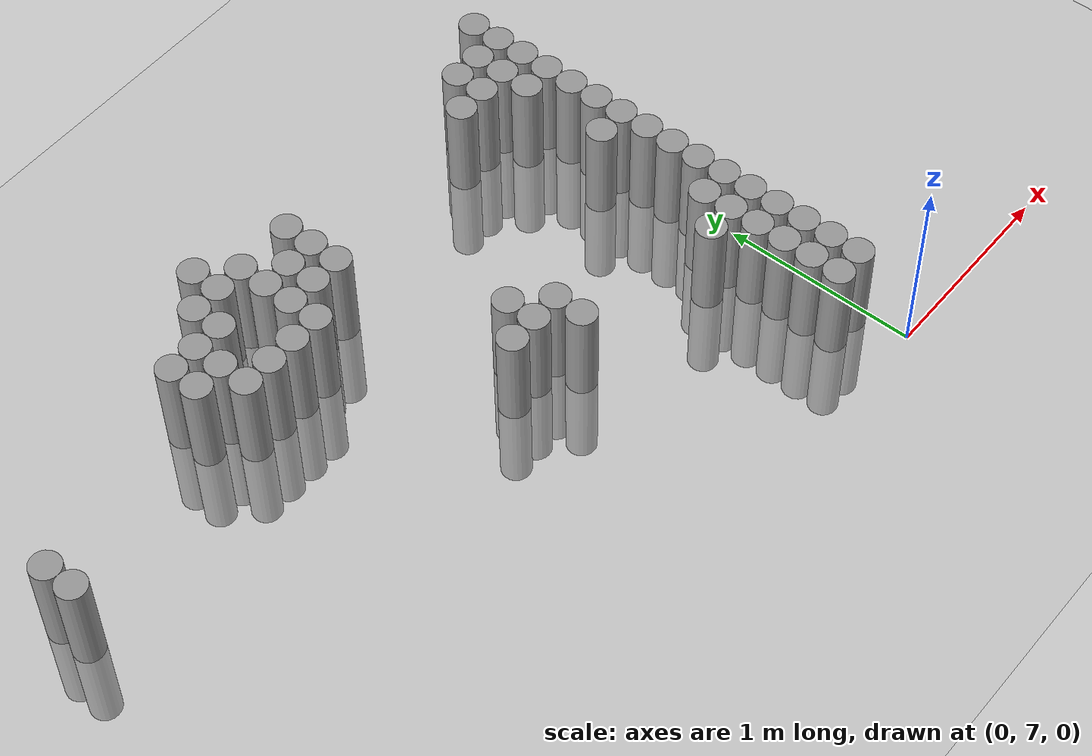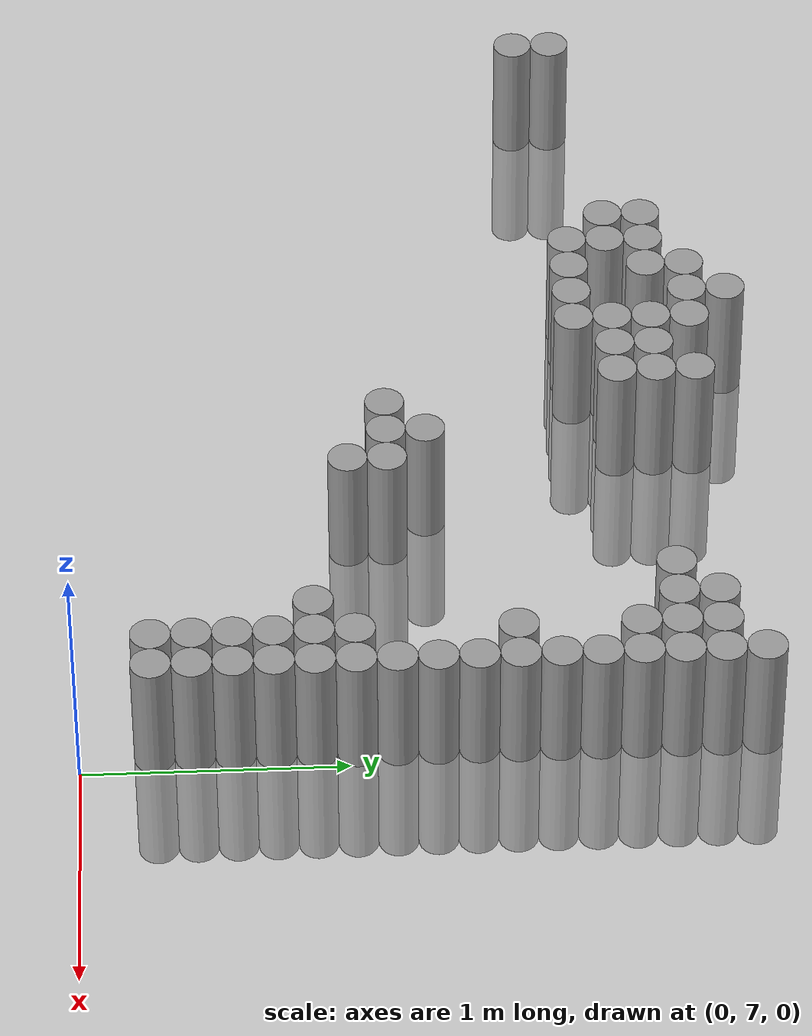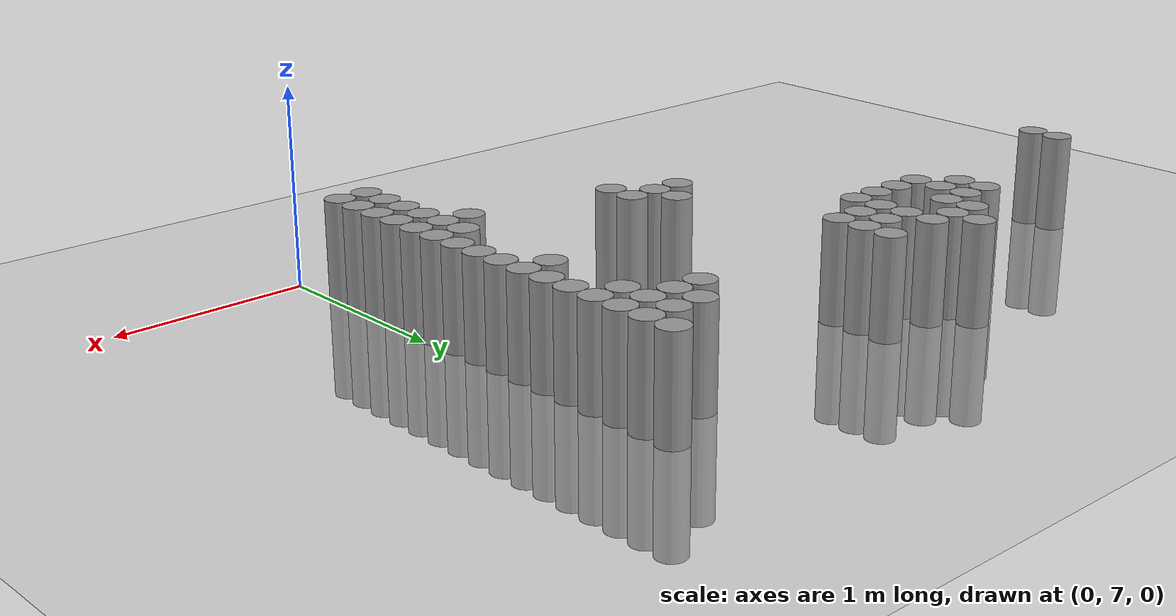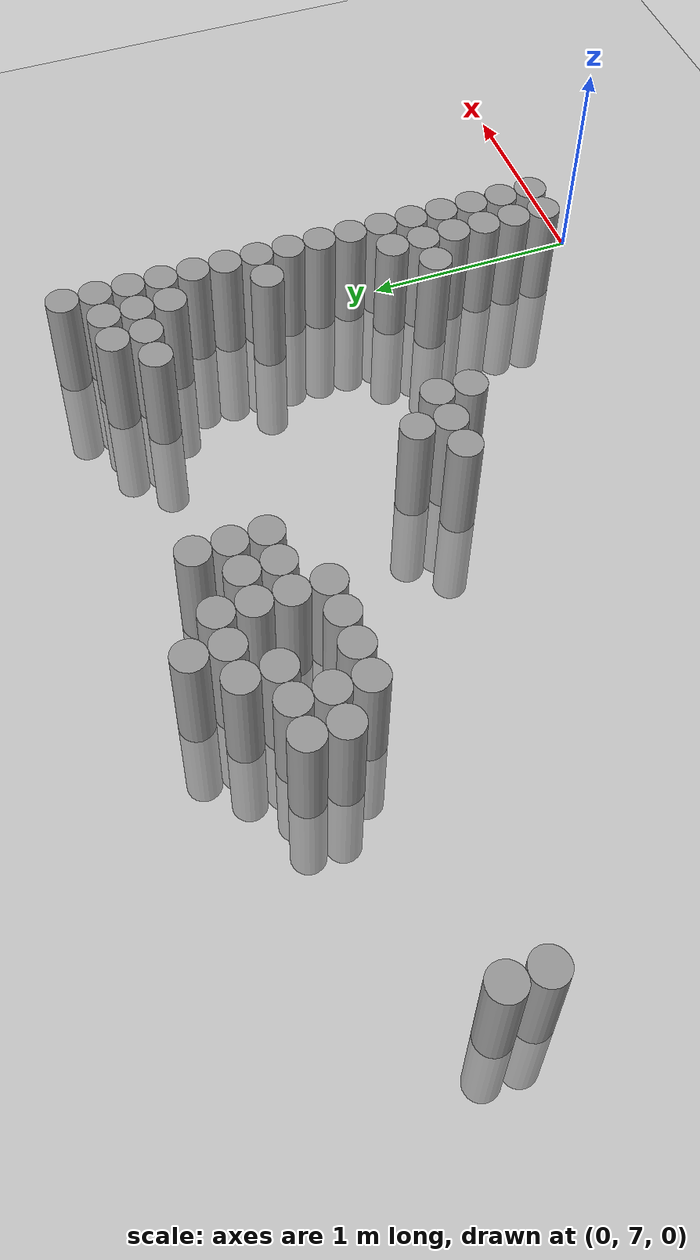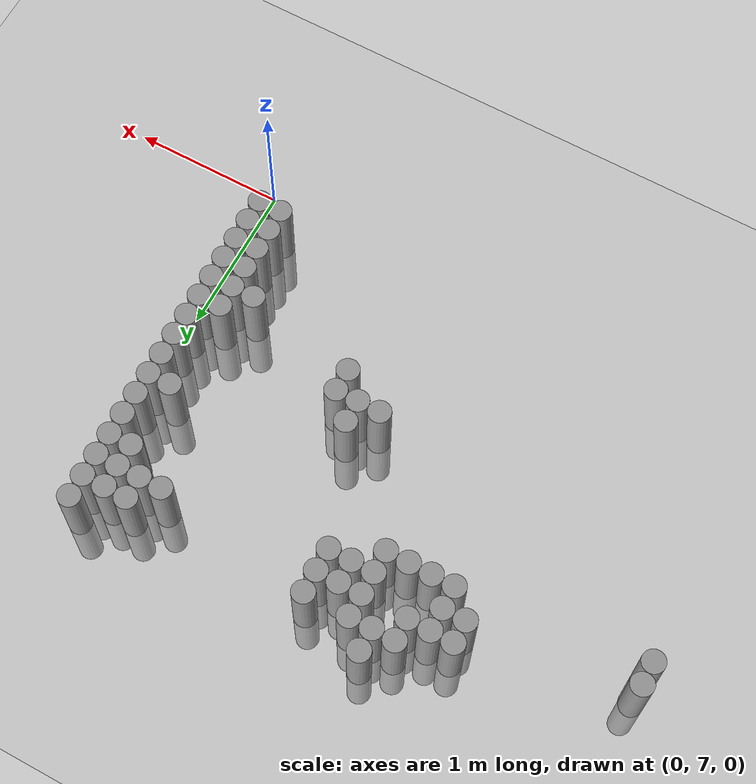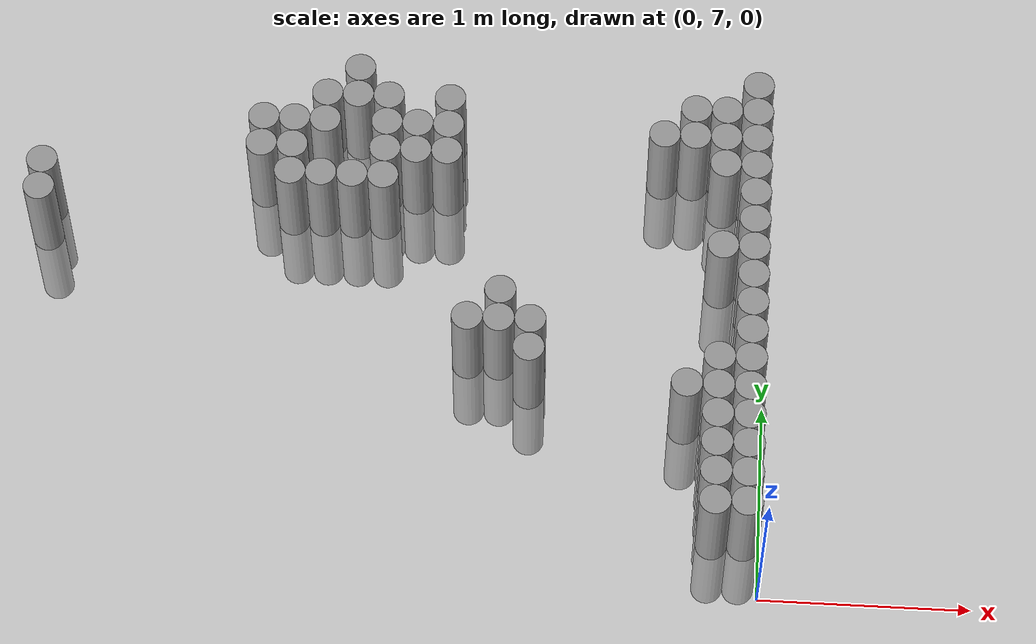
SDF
<sdf version="1.6">
 <world name="default">
  <model name="ground_plane">
   <static>1</static>
   <static>1</static>
   <link name="link">
    <collision name="collision">
     <geometry><plane><normal>0 0 1</normal><size>100 100</size></plane></geometry>
     <surface><friction><ode><mu>100</mu><mu2>50</mu2></ode></friction></surface>
    </collision>
    <visual name="visual">
     <cast_shadows>0</cast_shadows>
     <geometry><plane><normal>0 0 1</normal><size>100 100</size></plane></geometry>
     <material>
      <script><uri>file://media/materials/scripts/gazebo.material</uri><name>Gazebo/Grey</name></script>
     </material>
    </visual>
   </link>
  </model>
  <model name="unit_cylinder_158">
   <static>1</static>
   <pose>-3.525000 8.775000 0.000000 0.000000 0.000000 0.000000</pose>
   <link name="link">
    <inertial>
     <mass>1</mass>
     <inertia><ixx>0.145833</ixx><ixy>0</ixy><ixz>0</ixz><iyy>0.145833</iyy><iyz>0</iyz><izz>0.125</izz></inertia>
    </inertial>
    <collision name="collision">
     <geometry><cylinder><radius>0.075000</radius><length>1</length></cylinder></geometry>
    </collision>
    <visual name="visual">
     <geometry><cylinder><radius>0.075000</radius><length>1</length></cylinder></geometry>
     <material>
      <script><name>Gazebo/Grey</name><uri>file://media/materials/scripts/gazebo.material</uri></script>
     </material>
    </visual>
   </link>
  </model>
  <model name="unit_cylinder_159">
   <static>1</static>
   <pose>-3.525000 8.925000 0.000000 0.000000 0.000000 0.000000</pose>
   <link name="link">
    <inertial>
     <mass>1</mass>
     <inertia><ixx>0.145833</ixx><ixy>0</ixy><ixz>0</ixz><iyy>0.145833</iyy><iyz>0</iyz><izz>0.125</izz></inertia>
    </inertial>
    <collision name="collision">
     <geometry><cylinder><radius>0.075000</radius><length>1</length></cylinder></geometry>
    </collision>
    <visual name="visual">
     <geometry><cylinder><radius>0.075000</radius><length>1</length></cylinder></geometry>
     <material>
      <script><name>Gazebo/Grey</name><uri>file://media/materials/scripts/gazebo.material</uri></script>
     </material>
    </visual>
   </link>
  </model>
  <model name="unit_cylinder_170">
   <static>1</static>
   <pose>-2.475000 9.075000 0.000000 0.000000 0.000000 0.000000</pose>
   <link name="link">
    <inertial>
     <mass>1</mass>
     <inertia><ixx>0.145833</ixx><ixy>0</ixy><ixz>0</ixz><iyy>0.145833</iyy><iyz>0</iyz><izz>0.125</izz></inertia>
    </inertial>
    <collision name="collision">
     <geometry><cylinder><radius>0.075000</radius><length>1</length></cylinder></geometry>
    </collision>
    <visual name="visual">
     <geometry><cylinder><radius>0.075000</radius><length>1</length></cylinder></geometry>
     <material>
      <script><name>Gazebo/Grey</name><uri>file://media/materials/scripts/gazebo.material</uri></script>
     </material>
    </visual>
   </link>
  </model>
  <model name="unit_cylinder_171">
   <static>1</static>
   <pose>-2.475000 9.225000 0.000000 0.000000 0.000000 0.000000</pose>
   <link name="link">
    <inertial>
     <mass>1</mass>
     <inertia><ixx>0.145833</ixx><ixy>0</ixy><ixz>0</ixz><iyy>0.145833</iyy><iyz>0</iyz><izz>0.125</izz></inertia>
    </inertial>
    <collision name="collision">
     <geometry><cylinder><radius>0.075000</radius><length>1</length></cylinder></geometry>
    </collision>
    <visual name="visual">
     <geometry><cylinder><radius>0.075000</radius><length>1</length></cylinder></geometry>
     <material>
      <script><name>Gazebo/Grey</name><uri>file://media/materials/scripts/gazebo.material</uri></script>
     </material>
    </visual>
   </link>
  </model>
  <model name="unit_cylinder_176">
   <static>1</static>
   <pose>-2.325000 8.925000 0.000000 0.000000 0.000000 0.000000</pose>
   <link name="link">
    <inertial>
     <mass>1</mass>
     <inertia><ixx>0.145833</ixx><ixy>0</ixy><ixz>0</ixz><iyy>0.145833</iyy><iyz>0</iyz><izz>0.125</izz></inertia>
    </inertial>
    <collision name="collision">
     <geometry><cylinder><radius>0.075000</radius><length>1</length></cylinder></geometry>
    </collision>
    <visual name="visual">
     <geometry><cylinder><radius>0.075000</radius><length>1</length></cylinder></geometry>
     <material>
      <script><name>Gazebo/Grey</name><uri>file://media/materials/scripts/gazebo.material</uri></script>
     </material>
    </visual>
   </link>
  </model>
  <model name="unit_cylinder_177">
   <static>1</static>
   <pose>-2.325000 9.075000 0.000000 0.000000 0.000000 0.000000</pose>
   <link name="link">
    <inertial>
     <mass>1</mass>
     <inertia><ixx>0.145833</ixx><ixy>0</ixy><ixz>0</ixz><iyy>0.145833</iyy><iyz>0</iyz><izz>0.125</izz></inertia>
    </inertial>
    <collision name="collision">
     <geometry><cylinder><radius>0.075000</radius><length>1</length></cylinder></geometry>
    </collision>
    <visual name="visual">
     <geometry><cylinder><radius>0.075000</radius><length>1</length></cylinder></geometry>
     <material>
      <script><name>Gazebo/Grey</name><uri>file://media/materials/scripts/gazebo.material</uri></script>
     </material>
    </visual>
   </link>
  </model>
  <model name="unit_cylinder_178">
   <static>1</static>
   <pose>-2.325000 9.225000 0.000000 0.000000 0.000000 0.000000</pose>
   <link name="link">
    <inertial>
     <mass>1</mass>
     <inertia><ixx>0.145833</ixx><ixy>0</ixy><ixz>0</ixz><iyy>0.145833</iyy><iyz>0</iyz><izz>0.125</izz></inertia>
    </inertial>
    <collision name="collision">
     <geometry><cylinder><radius>0.075000</radius><length>1</length></cylinder></geometry>
    </collision>
    <visual name="visual">
     <geometry><cylinder><radius>0.075000</radius><length>1</length></cylinder></geometry>
     <material>
      <script><name>Gazebo/Grey</name><uri>file://media/materials/scripts/gazebo.material</uri></script>
     </material>
    </visual>
   </link>
  </model>
  <model name="unit_cylinder_183">
   <static>1</static>
   <pose>-2.175000 8.925000 0.000000 0.000000 0.000000 0.000000</pose>
   <link name="link">
    <inertial>
     <mass>1</mass>
     <inertia><ixx>0.145833</ixx><ixy>0</ixy><ixz>0</ixz><iyy>0.145833</iyy><iyz>0</iyz><izz>0.125</izz></inertia>
    </inertial>
    <collision name="collision">
     <geometry><cylinder><radius>0.075000</radius><length>1</length></cylinder></geometry>
    </collision>
    <visual name="visual">
     <geometry><cylinder><radius>0.075000</radius><length>1</length></cylinder></geometry>
     <material>
      <script><name>Gazebo/Grey</name><uri>file://media/materials/scripts/gazebo.material</uri></script>
     </material>
    </visual>
   </link>
  </model>
  <model name="unit_cylinder_184">
   <static>1</static>
   <pose>-2.175000 9.225000 0.000000 0.000000 0.000000 0.000000</pose>
   <link name="link">
    <inertial>
     <mass>1</mass>
     <inertia><ixx>0.145833</ixx><ixy>0</ixy><ixz>0</ixz><iyy>0.145833</iyy><iyz>0</iyz><izz>0.125</izz></inertia>
    </inertial>
    <collision name="collision">
     <geometry><cylinder><radius>0.075000</radius><length>1</length></cylinder></geometry>
    </collision>
    <visual name="visual">
     <geometry><cylinder><radius>0.075000</radius><length>1</length></cylinder></geometry>
     <material>
      <script><name>Gazebo/Grey</name><uri>file://media/materials/scripts/gazebo.material</uri></script>
     </material>
    </visual>
   </link>
  </model>
  <model name="unit_cylinder_185">
   <static>1</static>
   <pose>-2.175000 9.375000 0.000000 0.000000 0.000000 0.000000</pose>
   <link name="link">
    <inertial>
     <mass>1</mass>
     <inertia><ixx>0.145833</ixx><ixy>0</ixy><ixz>0</ixz><iyy>0.145833</iyy><iyz>0</iyz><izz>0.125</izz></inertia>
    </inertial>
    <collision name="collision">
     <geometry><cylinder><radius>0.075000</radius><length>1</length></cylinder></geometry>
    </collision>
    <visual name="visual">
     <geometry><cylinder><radius>0.075000</radius><length>1</length></cylinder></geometry>
     <material>
      <script><name>Gazebo/Grey</name><uri>file://media/materials/scripts/gazebo.material</uri></script>
     </material>
    </visual>
   </link>
  </model>
  <model name="unit_cylinder_189">
   <static>1</static>
   <pose>-2.025000 8.925000 0.000000 0.000000 0.000000 0.000000</pose>
   <link name="link">
    <inertial>
     <mass>1</mass>
     <inertia><ixx>0.145833</ixx><ixy>0</ixy><ixz>0</ixz><iyy>0.145833</iyy><iyz>0</iyz><izz>0.125</izz></inertia>
    </inertial>
    <collision name="collision">
     <geometry><cylinder><radius>0.075000</radius><length>1</length></cylinder></geometry>
    </collision>
    <visual name="visual">
     <geometry><cylinder><radius>0.075000</radius><length>1</length></cylinder></geometry>
     <material>
      <script><name>Gazebo/Grey</name><uri>file://media/materials/scripts/gazebo.material</uri></script>
     </material>
    </visual>
   </link>
  </model>
  <model name="unit_cylinder_190">
   <static>1</static>
   <pose>-2.025000 9.375000 0.000000 0.000000 0.000000 0.000000</pose>
   <link name="link">
    <inertial>
     <mass>1</mass>
     <inertia><ixx>0.145833</ixx><ixy>0</ixy><ixz>0</ixz><iyy>0.145833</iyy><iyz>0</iyz><izz>0.125</izz></inertia>
    </inertial>
    <collision name="collision">
     <geometry><cylinder><radius>0.075000</radius><length>1</length></cylinder></geometry>
    </collision>
    <visual name="visual">
     <geometry><cylinder><radius>0.075000</radius><length>1</length></cylinder></geometry>
     <material>
      <script><name>Gazebo/Grey</name><uri>file://media/materials/scripts/gazebo.material</uri></script>
     </material>
    </visual>
   </link>
  </model>
  <model name="unit_cylinder_191">
   <static>1</static>
   <pose>-2.025000 9.525000 0.000000 0.000000 0.000000 0.000000</pose>
   <link name="link">
    <inertial>
     <mass>1</mass>
     <inertia><ixx>0.145833</ixx><ixy>0</ixy><ixz>0</ixz><iyy>0.145833</iyy><iyz>0</iyz><izz>0.125</izz></inertia>
    </inertial>
    <collision name="collision">
     <geometry><cylinder><radius>0.075000</radius><length>1</length></cylinder></geometry>
    </collision>
    <visual name="visual">
     <geometry><cylinder><radius>0.075000</radius><length>1</length></cylinder></geometry>
     <material>
      <script><name>Gazebo/Grey</name><uri>file://media/materials/scripts/gazebo.material</uri></script>
     </material>
    </visual>
   </link>
  </model>
  <model name="unit_cylinder_192">
   <static>1</static>
   <pose>-1.875000 8.925000 0.000000 0.000000 0.000000 0.000000</pose>
   <link name="link">
    <inertial>
     <mass>1</mass>
     <inertia><ixx>0.145833</ixx><ixy>0</ixy><ixz>0</ixz><iyy>0.145833</iyy><iyz>0</iyz><izz>0.125</izz></inertia>
    </inertial>
    <collision name="collision">
     <geometry><cylinder><radius>0.075000</radius><length>1</length></cylinder></geometry>
    </collision>
    <visual name="visual">
     <geometry><cylinder><radius>0.075000</radius><length>1</length></cylinder></geometry>
     <material>
      <script><name>Gazebo/Grey</name><uri>file://media/materials/scripts/gazebo.material</uri></script>
     </material>
    </visual>
   </link>
  </model>
  <model name="unit_cylinder_193">
   <static>1</static>
   <pose>-1.875000 9.075000 0.000000 0.000000 0.000000 0.000000</pose>
   <link name="link">
    <inertial>
     <mass>1</mass>
     <inertia><ixx>0.145833</ixx><ixy>0</ixy><ixz>0</ixz><iyy>0.145833</iyy><iyz>0</iyz><izz>0.125</izz></inertia>
    </inertial>
    <collision name="collision">
     <geometry><cylinder><radius>0.075000</radius><length>1</length></cylinder></geometry>
    </collision>
    <visual name="visual">
     <geometry><cylinder><radius>0.075000</radius><length>1</length></cylinder></geometry>
     <material>
      <script><name>Gazebo/Grey</name><uri>file://media/materials/scripts/gazebo.material</uri></script>
     </material>
    </visual>
   </link>
  </model>
  <model name="unit_cylinder_194">
   <static>1</static>
   <pose>-1.875000 9.225000 0.000000 0.000000 0.000000 0.000000</pose>
   <link name="link">
    <inertial>
     <mass>1</mass>
     <inertia><ixx>0.145833</ixx><ixy>0</ixy><ixz>0</ixz><iyy>0.145833</iyy><iyz>0</iyz><izz>0.125</izz></inertia>
    </inertial>
    <collision name="collision">
     <geometry><cylinder><radius>0.075000</radius><length>1</length></cylinder></geometry>
    </collision>
    <visual name="visual">
     <geometry><cylinder><radius>0.075000</radius><length>1</length></cylinder></geometry>
     <material>
      <script><name>Gazebo/Grey</name><uri>file://media/materials/scripts/gazebo.material</uri></script>
     </material>
    </visual>
   </link>
  </model>
  <model name="unit_cylinder_195">
   <static>1</static>
   <pose>-1.875000 9.375000 0.000000 0.000000 0.000000 0.000000</pose>
   <link name="link">
    <inertial>
     <mass>1</mass>
     <inertia><ixx>0.145833</ixx><ixy>0</ixy><ixz>0</ixz><iyy>0.145833</iyy><iyz>0</iyz><izz>0.125</izz></inertia>
    </inertial>
    <collision name="collision">
     <geometry><cylinder><radius>0.075000</radius><length>1</length></cylinder></geometry>
    </collision>
    <visual name="visual">
     <geometry><cylinder><radius>0.075000</radius><length>1</length></cylinder></geometry>
     <material>
      <script><name>Gazebo/Grey</name><uri>file://media/materials/scripts/gazebo.material</uri></script>
     </material>
    </visual>
   </link>
  </model>
  <model name="unit_cylinder_200">
   <static>1</static>
   <pose>-1.725000 9.075000 0.000000 0.000000 0.000000 0.000000</pose>
   <link name="link">
    <inertial>
     <mass>1</mass>
     <inertia><ixx>0.145833</ixx><ixy>0</ixy><ixz>0</ixz><iyy>0.145833</iyy><iyz>0</iyz><izz>0.125</izz></inertia>
    </inertial>
    <collision name="collision">
     <geometry><cylinder><radius>0.075000</radius><length>1</length></cylinder></geometry>
    </collision>
    <visual name="visual">
     <geometry><cylinder><radius>0.075000</radius><length>1</length></cylinder></geometry>
     <material>
      <script><name>Gazebo/Grey</name><uri>file://media/materials/scripts/gazebo.material</uri></script>
     </material>
    </visual>
   </link>
  </model>
  <model name="unit_cylinder_201">
   <static>1</static>
   <pose>-1.725000 9.225000 0.000000 0.000000 0.000000 0.000000</pose>
   <link name="link">
    <inertial>
     <mass>1</mass>
     <inertia><ixx>0.145833</ixx><ixy>0</ixy><ixz>0</ixz><iyy>0.145833</iyy><iyz>0</iyz><izz>0.125</izz></inertia>
    </inertial>
    <collision name="collision">
     <geometry><cylinder><radius>0.075000</radius><length>1</length></cylinder></geometry>
    </collision>
    <visual name="visual">
     <geometry><cylinder><radius>0.075000</radius><length>1</length></cylinder></geometry>
     <material>
      <script><name>Gazebo/Grey</name><uri>file://media/materials/scripts/gazebo.material</uri></script>
     </material>
    </visual>
   </link>
  </model>
  <model name="unit_cylinder_205">
   <static>1</static>
   <pose>-1.575000 9.075000 0.000000 0.000000 0.000000 0.000000</pose>
   <link name="link">
    <inertial>
     <mass>1</mass>
     <inertia><ixx>0.145833</ixx><ixy>0</ixy><ixz>0</ixz><iyy>0.145833</iyy><iyz>0</iyz><izz>0.125</izz></inertia>
    </inertial>
    <collision name="collision">
     <geometry><cylinder><radius>0.075000</radius><length>1</length></cylinder></geometry>
    </collision>
    <visual name="visual">
     <geometry><cylinder><radius>0.075000</radius><length>1</length></cylinder></geometry>
     <material>
      <script><name>Gazebo/Grey</name><uri>file://media/materials/scripts/gazebo.material</uri></script>
     </material>
    </visual>
   </link>
  </model>
  <model name="unit_cylinder_206">
   <static>1</static>
   <pose>-1.575000 9.225000 0.000000 0.000000 0.000000 0.000000</pose>
   <link name="link">
    <inertial>
     <mass>1</mass>
     <inertia><ixx>0.145833</ixx><ixy>0</ixy><ixz>0</ixz><iyy>0.145833</iyy><iyz>0</iyz><izz>0.125</izz></inertia>
    </inertial>
    <collision name="collision">
     <geometry><cylinder><radius>0.075000</radius><length>1</length></cylinder></geometry>
    </collision>
    <visual name="visual">
     <geometry><cylinder><radius>0.075000</radius><length>1</length></cylinder></geometry>
     <material>
      <script><name>Gazebo/Grey</name><uri>file://media/materials/scripts/gazebo.material</uri></script>
     </material>
    </visual>
   </link>
  </model>
  <model name="unit_cylinder_207">
   <static>1</static>
   <pose>-1.575000 9.375000 0.000000 0.000000 0.000000 0.000000</pose>
   <link name="link">
    <inertial>
     <mass>1</mass>
     <inertia><ixx>0.145833</ixx><ixy>0</ixy><ixz>0</ixz><iyy>0.145833</iyy><iyz>0</iyz><izz>0.125</izz></inertia>
    </inertial>
    <collision name="collision">
     <geometry><cylinder><radius>0.075000</radius><length>1</length></cylinder></geometry>
    </collision>
    <visual name="visual">
     <geometry><cylinder><radius>0.075000</radius><length>1</length></cylinder></geometry>
     <material>
      <script><name>Gazebo/Grey</name><uri>file://media/materials/scripts/gazebo.material</uri></script>
     </material>
    </visual>
   </link>
  </model>
  <model name="unit_cylinder_210">
   <static>1</static>
   <pose>-1.425000 8.175000 0.000000 0.000000 0.000000 0.000000</pose>
   <link name="link">
    <inertial>
     <mass>1</mass>
     <inertia><ixx>0.145833</ixx><ixy>0</ixy><ixz>0</ixz><iyy>0.145833</iyy><iyz>0</iyz><izz>0.125</izz></inertia>
    </inertial>
    <collision name="collision">
     <geometry><cylinder><radius>0.075000</radius><length>1</length></cylinder></geometry>
    </collision>
    <visual name="visual">
     <geometry><cylinder><radius>0.075000</radius><length>1</length></cylinder></geometry>
     <material>
      <script><name>Gazebo/Grey</name><uri>file://media/materials/scripts/gazebo.material</uri></script>
     </material>
    </visual>
   </link>
  </model>
  <model name="unit_cylinder_215">
   <static>1</static>
   <pose>-1.275000 8.175000 0.000000 0.000000 0.000000 0.000000</pose>
   <link name="link">
    <inertial>
     <mass>1</mass>
     <inertia><ixx>0.145833</ixx><ixy>0</ixy><ixz>0</ixz><iyy>0.145833</iyy><iyz>0</iyz><izz>0.125</izz></inertia>
    </inertial>
    <collision name="collision">
     <geometry><cylinder><radius>0.075000</radius><length>1</length></cylinder></geometry>
    </collision>
    <visual name="visual">
     <geometry><cylinder><radius>0.075000</radius><length>1</length></cylinder></geometry>
     <material>
      <script><name>Gazebo/Grey</name><uri>file://media/materials/scripts/gazebo.material</uri></script>
     </material>
    </visual>
   </link>
  </model>
  <model name="unit_cylinder_216">
   <static>1</static>
   <pose>-1.275000 8.325000 0.000000 0.000000 0.000000 0.000000</pose>
   <link name="link">
    <inertial>
     <mass>1</mass>
     <inertia><ixx>0.145833</ixx><ixy>0</ixy><ixz>0</ixz><iyy>0.145833</iyy><iyz>0</iyz><izz>0.125</izz></inertia>
    </inertial>
    <collision name="collision">
     <geometry><cylinder><radius>0.075000</radius><length>1</length></cylinder></geometry>
    </collision>
    <visual name="visual">
     <geometry><cylinder><radius>0.075000</radius><length>1</length></cylinder></geometry>
     <material>
      <script><name>Gazebo/Grey</name><uri>file://media/materials/scripts/gazebo.material</uri></script>
     </material>
    </visual>
   </link>
  </model>
  <model name="unit_cylinder_221">
   <static>1</static>
   <pose>-1.125000 8.025000 0.000000 0.000000 0.000000 0.000000</pose>
   <link name="link">
    <inertial>
     <mass>1</mass>
     <inertia><ixx>0.145833</ixx><ixy>0</ixy><ixz>0</ixz><iyy>0.145833</iyy><iyz>0</iyz><izz>0.125</izz></inertia>
    </inertial>
    <collision name="collision">
     <geometry><cylinder><radius>0.075000</radius><length>1</length></cylinder></geometry>
    </collision>
    <visual name="visual">
     <geometry><cylinder><radius>0.075000</radius><length>1</length></cylinder></geometry>
     <material>
      <script><name>Gazebo/Grey</name><uri>file://media/materials/scripts/gazebo.material</uri></script>
     </material>
    </visual>
   </link>
  </model>
  <model name="unit_cylinder_222">
   <static>1</static>
   <pose>-1.125000 8.175000 0.000000 0.000000 0.000000 0.000000</pose>
   <link name="link">
    <inertial>
     <mass>1</mass>
     <inertia><ixx>0.145833</ixx><ixy>0</ixy><ixz>0</ixz><iyy>0.145833</iyy><iyz>0</iyz><izz>0.125</izz></inertia>
    </inertial>
    <collision name="collision">
     <geometry><cylinder><radius>0.075000</radius><length>1</length></cylinder></geometry>
    </collision>
    <visual name="visual">
     <geometry><cylinder><radius>0.075000</radius><length>1</length></cylinder></geometry>
     <material>
      <script><name>Gazebo/Grey</name><uri>file://media/materials/scripts/gazebo.material</uri></script>
     </material>
    </visual>
   </link>
  </model>
  <model name="unit_cylinder_229">
   <static>1</static>
   <pose>-0.525000 9.225000 0.000000 0.000000 0.000000 0.000000</pose>
   <link name="link">
    <inertial>
     <mass>1</mass>
     <inertia><ixx>0.145833</ixx><ixy>0</ixy><ixz>0</ixz><iyy>0.145833</iyy><iyz>0</iyz><izz>0.125</izz></inertia>
    </inertial>
    <collision name="collision">
     <geometry><cylinder><radius>0.075000</radius><length>1</length></cylinder></geometry>
    </collision>
    <visual name="visual">
     <geometry><cylinder><radius>0.075000</radius><length>1</length></cylinder></geometry>
     <material>
      <script><name>Gazebo/Grey</name><uri>file://media/materials/scripts/gazebo.material</uri></script>
     </material>
    </visual>
   </link>
  </model>
  <model name="unit_cylinder_233">
   <static>1</static>
   <pose>-0.375000 7.875000 0.000000 0.000000 0.000000 0.000000</pose>
   <link name="link">
    <inertial>
     <mass>1</mass>
     <inertia><ixx>0.145833</ixx><ixy>0</ixy><ixz>0</ixz><iyy>0.145833</iyy><iyz>0</iyz><izz>0.125</izz></inertia>
    </inertial>
    <collision name="collision">
     <geometry><cylinder><radius>0.075000</radius><length>1</length></cylinder></geometry>
    </collision>
    <visual name="visual">
     <geometry><cylinder><radius>0.075000</radius><length>1</length></cylinder></geometry>
     <material>
      <script><name>Gazebo/Grey</name><uri>file://media/materials/scripts/gazebo.material</uri></script>
     </material>
    </visual>
   </link>
  </model>
  <model name="unit_cylinder_234">
   <static>1</static>
   <pose>-0.375000 9.225000 0.000000 0.000000 0.000000 0.000000</pose>
   <link name="link">
    <inertial>
     <mass>1</mass>
     <inertia><ixx>0.145833</ixx><ixy>0</ixy><ixz>0</ixz><iyy>0.145833</iyy><iyz>0</iyz><izz>0.125</izz></inertia>
    </inertial>
    <collision name="collision">
     <geometry><cylinder><radius>0.075000</radius><length>1</length></cylinder></geometry>
    </collision>
    <visual name="visual">
     <geometry><cylinder><radius>0.075000</radius><length>1</length></cylinder></geometry>
     <material>
      <script><name>Gazebo/Grey</name><uri>file://media/materials/scripts/gazebo.material</uri></script>
     </material>
    </visual>
   </link>
  </model>
  <model name="unit_cylinder_235">
   <static>1</static>
   <pose>-0.375000 9.375000 0.000000 0.000000 0.000000 0.000000</pose>
   <link name="link">
    <inertial>
     <mass>1</mass>
     <inertia><ixx>0.145833</ixx><ixy>0</ixy><ixz>0</ixz><iyy>0.145833</iyy><iyz>0</iyz><izz>0.125</izz></inertia>
    </inertial>
    <collision name="collision">
     <geometry><cylinder><radius>0.075000</radius><length>1</length></cylinder></geometry>
    </collision>
    <visual name="visual">
     <geometry><cylinder><radius>0.075000</radius><length>1</length></cylinder></geometry>
     <material>
      <script><name>Gazebo/Grey</name><uri>file://media/materials/scripts/gazebo.material</uri></script>
     </material>
    </visual>
   </link>
  </model>
  <model name="unit_cylinder_244">
   <static>1</static>
   <pose>-0.225000 7.275000 0.000000 0.000000 0.000000 0.000000</pose>
   <link name="link">
    <inertial>
     <mass>1</mass>
     <inertia><ixx>0.145833</ixx><ixy>0</ixy><ixz>0</ixz><iyy>0.145833</iyy><iyz>0</iyz><izz>0.125</izz></inertia>
    </inertial>
    <collision name="collision">
     <geometry><cylinder><radius>0.075000</radius><length>1</length></cylinder></geometry>
    </collision>
    <visual name="visual">
     <geometry><cylinder><radius>0.075000</radius><length>1</length></cylinder></geometry>
     <material>
      <script><name>Gazebo/Grey</name><uri>file://media/materials/scripts/gazebo.material</uri></script>
     </material>
    </visual>
   </link>
  </model>
  <model name="unit_cylinder_245">
   <static>1</static>
   <pose>-0.225000 7.425000 0.000000 0.000000 0.000000 0.000000</pose>
   <link name="link">
    <inertial>
     <mass>1</mass>
     <inertia><ixx>0.145833</ixx><ixy>0</ixy><ixz>0</ixz><iyy>0.145833</iyy><iyz>0</iyz><izz>0.125</izz></inertia>
    </inertial>
    <collision name="collision">
     <geometry><cylinder><radius>0.075000</radius><length>1</length></cylinder></geometry>
    </collision>
    <visual name="visual">
     <geometry><cylinder><radius>0.075000</radius><length>1</length></cylinder></geometry>
     <material>
      <script><name>Gazebo/Grey</name><uri>file://media/materials/scripts/gazebo.material</uri></script>
     </material>
    </visual>
   </link>
  </model>
  <model name="unit_cylinder_246">
   <static>1</static>
   <pose>-0.225000 7.575000 0.000000 0.000000 0.000000 0.000000</pose>
   <link name="link">
    <inertial>
     <mass>1</mass>
     <inertia><ixx>0.145833</ixx><ixy>0</ixy><ixz>0</ixz><iyy>0.145833</iyy><iyz>0</iyz><izz>0.125</izz></inertia>
    </inertial>
    <collision name="collision">
     <geometry><cylinder><radius>0.075000</radius><length>1</length></cylinder></geometry>
    </collision>
    <visual name="visual">
     <geometry><cylinder><radius>0.075000</radius><length>1</length></cylinder></geometry>
     <material>
      <script><name>Gazebo/Grey</name><uri>file://media/materials/scripts/gazebo.material</uri></script>
     </material>
    </visual>
   </link>
  </model>
  <model name="unit_cylinder_247">
   <static>1</static>
   <pose>-0.225000 7.725000 0.000000 0.000000 0.000000 0.000000</pose>
   <link name="link">
    <inertial>
     <mass>1</mass>
     <inertia><ixx>0.145833</ixx><ixy>0</ixy><ixz>0</ixz><iyy>0.145833</iyy><iyz>0</iyz><izz>0.125</izz></inertia>
    </inertial>
    <collision name="collision">
     <geometry><cylinder><radius>0.075000</radius><length>1</length></cylinder></geometry>
    </collision>
    <visual name="visual">
     <geometry><cylinder><radius>0.075000</radius><length>1</length></cylinder></geometry>
     <material>
      <script><name>Gazebo/Grey</name><uri>file://media/materials/scripts/gazebo.material</uri></script>
     </material>
    </visual>
   </link>
  </model>
  <model name="unit_cylinder_248">
   <static>1</static>
   <pose>-0.225000 7.875000 0.000000 0.000000 0.000000 0.000000</pose>
   <link name="link">
    <inertial>
     <mass>1</mass>
     <inertia><ixx>0.145833</ixx><ixy>0</ixy><ixz>0</ixz><iyy>0.145833</iyy><iyz>0</iyz><izz>0.125</izz></inertia>
    </inertial>
    <collision name="collision">
     <geometry><cylinder><radius>0.075000</radius><length>1</length></cylinder></geometry>
    </collision>
    <visual name="visual">
     <geometry><cylinder><radius>0.075000</radius><length>1</length></cylinder></geometry>
     <material>
      <script><name>Gazebo/Grey</name><uri>file://media/materials/scripts/gazebo.material</uri></script>
     </material>
    </visual>
   </link>
  </model>
  <model name="unit_cylinder_249">
   <static>1</static>
   <pose>-0.225000 8.025000 0.000000 0.000000 0.000000 0.000000</pose>
   <link name="link">
    <inertial>
     <mass>1</mass>
     <inertia><ixx>0.145833</ixx><ixy>0</ixy><ixz>0</ixz><iyy>0.145833</iyy><iyz>0</iyz><izz>0.125</izz></inertia>
    </inertial>
    <collision name="collision">
     <geometry><cylinder><radius>0.075000</radius><length>1</length></cylinder></geometry>
    </collision>
    <visual name="visual">
     <geometry><cylinder><radius>0.075000</radius><length>1</length></cylinder></geometry>
     <material>
      <script><name>Gazebo/Grey</name><uri>file://media/materials/scripts/gazebo.material</uri></script>
     </material>
    </visual>
   </link>
  </model>
  <model name="unit_cylinder_250">
   <static>1</static>
   <pose>-0.225000 8.625000 0.000000 0.000000 0.000000 0.000000</pose>
   <link name="link">
    <inertial>
     <mass>1</mass>
     <inertia><ixx>0.145833</ixx><ixy>0</ixy><ixz>0</ixz><iyy>0.145833</iyy><iyz>0</iyz><izz>0.125</izz></inertia>
    </inertial>
    <collision name="collision">
     <geometry><cylinder><radius>0.075000</radius><length>1</length></cylinder></geometry>
    </collision>
    <visual name="visual">
     <geometry><cylinder><radius>0.075000</radius><length>1</length></cylinder></geometry>
     <material>
      <script><name>Gazebo/Grey</name><uri>file://media/materials/scripts/gazebo.material</uri></script>
     </material>
    </visual>
   </link>
  </model>
  <model name="unit_cylinder_251">
   <static>1</static>
   <pose>-0.225000 9.075000 0.000000 0.000000 0.000000 0.000000</pose>
   <link name="link">
    <inertial>
     <mass>1</mass>
     <inertia><ixx>0.145833</ixx><ixy>0</ixy><ixz>0</ixz><iyy>0.145833</iyy><iyz>0</iyz><izz>0.125</izz></inertia>
    </inertial>
    <collision name="collision">
     <geometry><cylinder><radius>0.075000</radius><length>1</length></cylinder></geometry>
    </collision>
    <visual name="visual">
     <geometry><cylinder><radius>0.075000</radius><length>1</length></cylinder></geometry>
     <material>
      <script><name>Gazebo/Grey</name><uri>file://media/materials/scripts/gazebo.material</uri></script>
     </material>
    </visual>
   </link>
  </model>
  <model name="unit_cylinder_252">
   <static>1</static>
   <pose>-0.225000 9.225000 0.000000 0.000000 0.000000 0.000000</pose>
   <link name="link">
    <inertial>
     <mass>1</mass>
     <inertia><ixx>0.145833</ixx><ixy>0</ixy><ixz>0</ixz><iyy>0.145833</iyy><iyz>0</iyz><izz>0.125</izz></inertia>
    </inertial>
    <collision name="collision">
     <geometry><cylinder><radius>0.075000</radius><length>1</length></cylinder></geometry>
    </collision>
    <visual name="visual">
     <geometry><cylinder><radius>0.075000</radius><length>1</length></cylinder></geometry>
     <material>
      <script><name>Gazebo/Grey</name><uri>file://media/materials/scripts/gazebo.material</uri></script>
     </material>
    </visual>
   </link>
  </model>
  <model name="unit_cylinder_253">
   <static>1</static>
   <pose>-0.225000 9.375000 0.000000 0.000000 0.000000 0.000000</pose>
   <link name="link">
    <inertial>
     <mass>1</mass>
     <inertia><ixx>0.145833</ixx><ixy>0</ixy><ixz>0</ixz><iyy>0.145833</iyy><iyz>0</iyz><izz>0.125</izz></inertia>
    </inertial>
    <collision name="collision">
     <geometry><cylinder><radius>0.075000</radius><length>1</length></cylinder></geometry>
    </collision>
    <visual name="visual">
     <geometry><cylinder><radius>0.075000</radius><length>1</length></cylinder></geometry>
     <material>
      <script><name>Gazebo/Grey</name><uri>file://media/materials/scripts/gazebo.material</uri></script>
     </material>
    </visual>
   </link>
  </model>
  <model name="unit_cylinder_268">
   <static>1</static>
   <pose>-0.075000 7.275000 0.000000 0.000000 0.000000 0.000000</pose>
   <link name="link">
    <inertial>
     <mass>1</mass>
     <inertia><ixx>0.145833</ixx><ixy>0</ixy><ixz>0</ixz><iyy>0.145833</iyy><iyz>0</iyz><izz>0.125</izz></inertia>
    </inertial>
    <collision name="collision">
     <geometry><cylinder><radius>0.075000</radius><length>1</length></cylinder></geometry>
    </collision>
    <visual name="visual">
     <geometry><cylinder><radius>0.075000</radius><length>1</length></cylinder></geometry>
     <material>
      <script><name>Gazebo/Grey</name><uri>file://media/materials/scripts/gazebo.material</uri></script>
     </material>
    </visual>
   </link>
  </model>
  <model name="unit_cylinder_269">
   <static>1</static>
   <pose>-0.075000 7.425000 0.000000 0.000000 0.000000 0.000000</pose>
   <link name="link">
    <inertial>
     <mass>1</mass>
     <inertia><ixx>0.145833</ixx><ixy>0</ixy><ixz>0</ixz><iyy>0.145833</iyy><iyz>0</iyz><izz>0.125</izz></inertia>
    </inertial>
    <collision name="collision">
     <geometry><cylinder><radius>0.075000</radius><length>1</length></cylinder></geometry>
    </collision>
    <visual name="visual">
     <geometry><cylinder><radius>0.075000</radius><length>1</length></cylinder></geometry>
     <material>
      <script><name>Gazebo/Grey</name><uri>file://media/materials/scripts/gazebo.material</uri></script>
     </material>
    </visual>
   </link>
  </model>
  <model name="unit_cylinder_270">
   <static>1</static>
   <pose>-0.075000 7.575000 0.000000 0.000000 0.000000 0.000000</pose>
   <link name="link">
    <inertial>
     <mass>1</mass>
     <inertia><ixx>0.145833</ixx><ixy>0</ixy><ixz>0</ixz><iyy>0.145833</iyy><iyz>0</iyz><izz>0.125</izz></inertia>
    </inertial>
    <collision name="collision">
     <geometry><cylinder><radius>0.075000</radius><length>1</length></cylinder></geometry>
    </collision>
    <visual name="visual">
     <geometry><cylinder><radius>0.075000</radius><length>1</length></cylinder></geometry>
     <material>
      <script><name>Gazebo/Grey</name><uri>file://media/materials/scripts/gazebo.material</uri></script>
     </material>
    </visual>
   </link>
  </model>
  <model name="unit_cylinder_271">
   <static>1</static>
   <pose>-0.075000 7.725000 0.000000 0.000000 0.000000 0.000000</pose>
   <link name="link">
    <inertial>
     <mass>1</mass>
     <inertia><ixx>0.145833</ixx><ixy>0</ixy><ixz>0</ixz><iyy>0.145833</iyy><iyz>0</iyz><izz>0.125</izz></inertia>
    </inertial>
    <collision name="collision">
     <geometry><cylinder><radius>0.075000</radius><length>1</length></cylinder></geometry>
    </collision>
    <visual name="visual">
     <geometry><cylinder><radius>0.075000</radius><length>1</length></cylinder></geometry>
     <material>
      <script><name>Gazebo/Grey</name><uri>file://media/materials/scripts/gazebo.material</uri></script>
     </material>
    </visual>
   </link>
  </model>
  <model name="unit_cylinder_272">
   <static>1</static>
   <pose>-0.075000 7.875000 0.000000 0.000000 0.000000 0.000000</pose>
   <link name="link">
    <inertial>
     <mass>1</mass>
     <inertia><ixx>0.145833</ixx><ixy>0</ixy><ixz>0</ixz><iyy>0.145833</iyy><iyz>0</iyz><izz>0.125</izz></inertia>
    </inertial>
    <collision name="collision">
     <geometry><cylinder><radius>0.075000</radius><length>1</length></cylinder></geometry>
    </collision>
    <visual name="visual">
     <geometry><cylinder><radius>0.075000</radius><length>1</length></cylinder></geometry>
     <material>
      <script><name>Gazebo/Grey</name><uri>file://media/materials/scripts/gazebo.material</uri></script>
     </material>
    </visual>
   </link>
  </model>
  <model name="unit_cylinder_273">
   <static>1</static>
   <pose>-0.075000 8.025000 0.000000 0.000000 0.000000 0.000000</pose>
   <link name="link">
    <inertial>
     <mass>1</mass>
     <inertia><ixx>0.145833</ixx><ixy>0</ixy><ixz>0</ixz><iyy>0.145833</iyy><iyz>0</iyz><izz>0.125</izz></inertia>
    </inertial>
    <collision name="collision">
     <geometry><cylinder><radius>0.075000</radius><length>1</length></cylinder></geometry>
    </collision>
    <visual name="visual">
     <geometry><cylinder><radius>0.075000</radius><length>1</length></cylinder></geometry>
     <material>
      <script><name>Gazebo/Grey</name><uri>file://media/materials/scripts/gazebo.material</uri></script>
     </material>
    </visual>
   </link>
  </model>
  <model name="unit_cylinder_274">
   <static>1</static>
   <pose>-0.075000 8.175000 0.000000 0.000000 0.000000 0.000000</pose>
   <link name="link">
    <inertial>
     <mass>1</mass>
     <inertia><ixx>0.145833</ixx><ixy>0</ixy><ixz>0</ixz><iyy>0.145833</iyy><iyz>0</iyz><izz>0.125</izz></inertia>
    </inertial>
    <collision name="collision">
     <geometry><cylinder><radius>0.075000</radius><length>1</length></cylinder></geometry>
    </collision>
    <visual name="visual">
     <geometry><cylinder><radius>0.075000</radius><length>1</length></cylinder></geometry>
     <material>
      <script><name>Gazebo/Grey</name><uri>file://media/materials/scripts/gazebo.material</uri></script>
     </material>
    </visual>
   </link>
  </model>
  <model name="unit_cylinder_275">
   <static>1</static>
   <pose>-0.075000 8.325000 0.000000 0.000000 0.000000 0.000000</pose>
   <link name="link">
    <inertial>
     <mass>1</mass>
     <inertia><ixx>0.145833</ixx><ixy>0</ixy><ixz>0</ixz><iyy>0.145833</iyy><iyz>0</iyz><izz>0.125</izz></inertia>
    </inertial>
    <collision name="collision">
     <geometry><cylinder><radius>0.075000</radius><length>1</length></cylinder></geometry>
    </collision>
    <visual name="visual">
     <geometry><cylinder><radius>0.075000</radius><length>1</length></cylinder></geometry>
     <material>
      <script><name>Gazebo/Grey</name><uri>file://media/materials/scripts/gazebo.material</uri></script>
     </material>
    </visual>
   </link>
  </model>
  <model name="unit_cylinder_276">
   <static>1</static>
   <pose>-0.075000 8.475000 0.000000 0.000000 0.000000 0.000000</pose>
   <link name="link">
    <inertial>
     <mass>1</mass>
     <inertia><ixx>0.145833</ixx><ixy>0</ixy><ixz>0</ixz><iyy>0.145833</iyy><iyz>0</iyz><izz>0.125</izz></inertia>
    </inertial>
    <collision name="collision">
     <geometry><cylinder><radius>0.075000</radius><length>1</length></cylinder></geometry>
    </collision>
    <visual name="visual">
     <geometry><cylinder><radius>0.075000</radius><length>1</length></cylinder></geometry>
     <material>
      <script><name>Gazebo/Grey</name><uri>file://media/materials/scripts/gazebo.material</uri></script>
     </material>
    </visual>
   </link>
  </model>
  <model name="unit_cylinder_277">
   <static>1</static>
   <pose>-0.075000 8.625000 0.000000 0.000000 0.000000 0.000000</pose>
   <link name="link">
    <inertial>
     <mass>1</mass>
     <inertia><ixx>0.145833</ixx><ixy>0</ixy><ixz>0</ixz><iyy>0.145833</iyy><iyz>0</iyz><izz>0.125</izz></inertia>
    </inertial>
    <collision name="collision">
     <geometry><cylinder><radius>0.075000</radius><length>1</length></cylinder></geometry>
    </collision>
    <visual name="visual">
     <geometry><cylinder><radius>0.075000</radius><length>1</length></cylinder></geometry>
     <material>
      <script><name>Gazebo/Grey</name><uri>file://media/materials/scripts/gazebo.material</uri></script>
     </material>
    </visual>
   </link>
  </model>
  <model name="unit_cylinder_278">
   <static>1</static>
   <pose>-0.075000 8.775000 0.000000 0.000000 0.000000 0.000000</pose>
   <link name="link">
    <inertial>
     <mass>1</mass>
     <inertia><ixx>0.145833</ixx><ixy>0</ixy><ixz>0</ixz><iyy>0.145833</iyy><iyz>0</iyz><izz>0.125</izz></inertia>
    </inertial>
    <collision name="collision">
     <geometry><cylinder><radius>0.075000</radius><length>1</length></cylinder></geometry>
    </collision>
    <visual name="visual">
     <geometry><cylinder><radius>0.075000</radius><length>1</length></cylinder></geometry>
     <material>
      <script><name>Gazebo/Grey</name><uri>file://media/materials/scripts/gazebo.material</uri></script>
     </material>
    </visual>
   </link>
  </model>
  <model name="unit_cylinder_279">
   <static>1</static>
   <pose>-0.075000 8.925000 0.000000 0.000000 0.000000 0.000000</pose>
   <link name="link">
    <inertial>
     <mass>1</mass>
     <inertia><ixx>0.145833</ixx><ixy>0</ixy><ixz>0</ixz><iyy>0.145833</iyy><iyz>0</iyz><izz>0.125</izz></inertia>
    </inertial>
    <collision name="collision">
     <geometry><cylinder><radius>0.075000</radius><length>1</length></cylinder></geometry>
    </collision>
    <visual name="visual">
     <geometry><cylinder><radius>0.075000</radius><length>1</length></cylinder></geometry>
     <material>
      <script><name>Gazebo/Grey</name><uri>file://media/materials/scripts/gazebo.material</uri></script>
     </material>
    </visual>
   </link>
  </model>
  <model name="unit_cylinder_280">
   <static>1</static>
   <pose>-0.075000 9.075000 0.000000 0.000000 0.000000 0.000000</pose>
   <link name="link">
    <inertial>
     <mass>1</mass>
     <inertia><ixx>0.145833</ixx><ixy>0</ixy><ixz>0</ixz><iyy>0.145833</iyy><iyz>0</iyz><izz>0.125</izz></inertia>
    </inertial>
    <collision name="collision">
     <geometry><cylinder><radius>0.075000</radius><length>1</length></cylinder></geometry>
    </collision>
    <visual name="visual">
     <geometry><cylinder><radius>0.075000</radius><length>1</length></cylinder></geometry>
     <material>
      <script><name>Gazebo/Grey</name><uri>file://media/materials/scripts/gazebo.material</uri></script>
     </material>
    </visual>
   </link>
  </model>
  <model name="unit_cylinder_281">
   <static>1</static>
   <pose>-0.075000 9.225000 0.000000 0.000000 0.000000 0.000000</pose>
   <link name="link">
    <inertial>
     <mass>1</mass>
     <inertia><ixx>0.145833</ixx><ixy>0</ixy><ixz>0</ixz><iyy>0.145833</iyy><iyz>0</iyz><izz>0.125</izz></inertia>
    </inertial>
    <collision name="collision">
     <geometry><cylinder><radius>0.075000</radius><length>1</length></cylinder></geometry>
    </collision>
    <visual name="visual">
     <geometry><cylinder><radius>0.075000</radius><length>1</length></cylinder></geometry>
     <material>
      <script><name>Gazebo/Grey</name><uri>file://media/materials/scripts/gazebo.material</uri></script>
     </material>
    </visual>
   </link>
  </model>
  <model name="unit_cylinder_282">
   <static>1</static>
   <pose>-0.075000 9.375000 0.000000 0.000000 0.000000 0.000000</pose>
   <link name="link">
    <inertial>
     <mass>1</mass>
     <inertia><ixx>0.145833</ixx><ixy>0</ixy><ixz>0</ixz><iyy>0.145833</iyy><iyz>0</iyz><izz>0.125</izz></inertia>
    </inertial>
    <collision name="collision">
     <geometry><cylinder><radius>0.075000</radius><length>1</length></cylinder></geometry>
    </collision>
    <visual name="visual">
     <geometry><cylinder><radius>0.075000</radius><length>1</length></cylinder></geometry>
     <material>
      <script><name>Gazebo/Grey</name><uri>file://media/materials/scripts/gazebo.material</uri></script>
     </material>
    </visual>
   </link>
  </model>
  <model name="unit_cylinder_283">
   <static>1</static>
   <pose>-0.075000 9.525000 0.000000 0.000000 0.000000 0.000000</pose>
   <link name="link">
    <inertial>
     <mass>1</mass>
     <inertia><ixx>0.145833</ixx><ixy>0</ixy><ixz>0</ixz><iyy>0.145833</iyy><iyz>0</iyz><izz>0.125</izz></inertia>
    </inertial>
    <collision name="collision">
     <geometry><cylinder><radius>0.075000</radius><length>1</length></cylinder></geometry>
    </collision>
    <visual name="visual">
     <geometry><cylinder><radius>0.075000</radius><length>1</length></cylinder></geometry>
     <material>
      <script><name>Gazebo/Grey</name><uri>file://media/materials/scripts/gazebo.material</uri></script>
     </material>
    </visual>
   </link>
  </model>
 </world>
</sdf>
